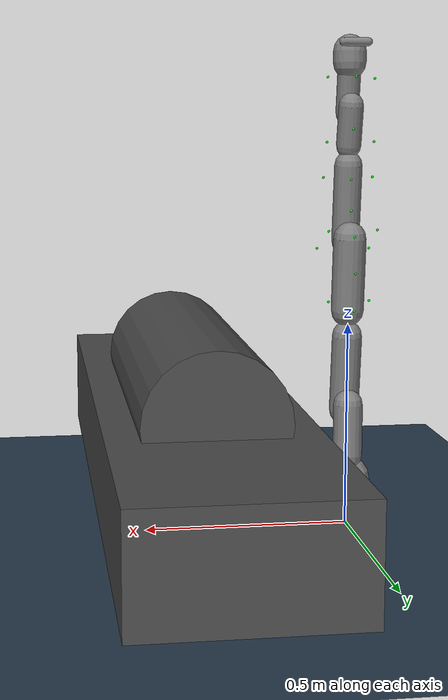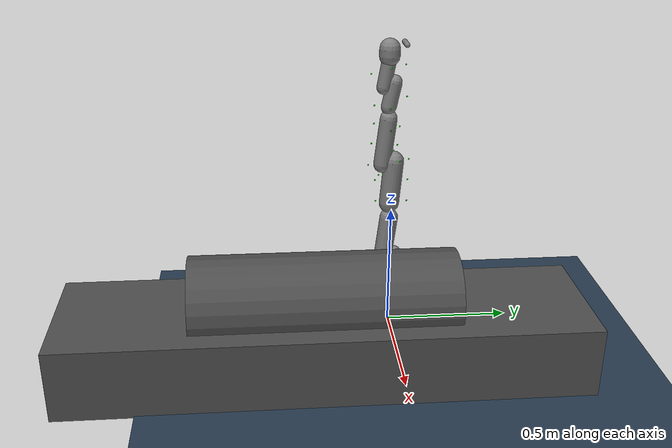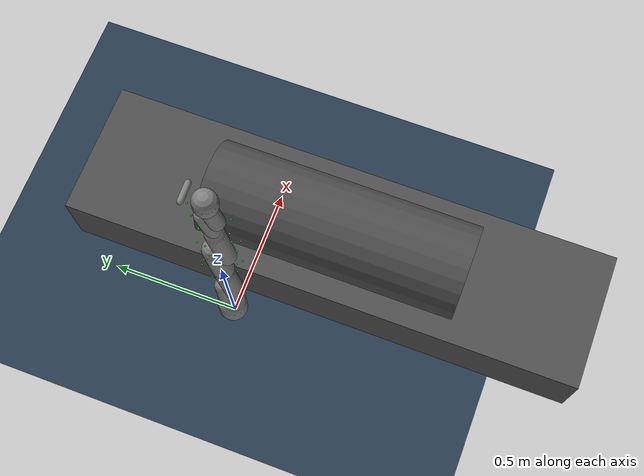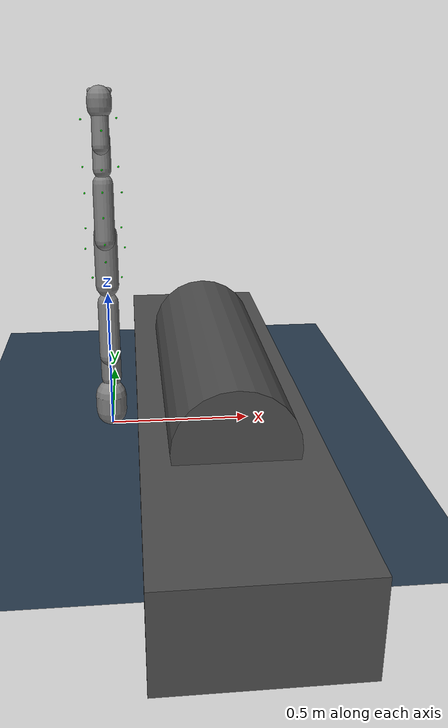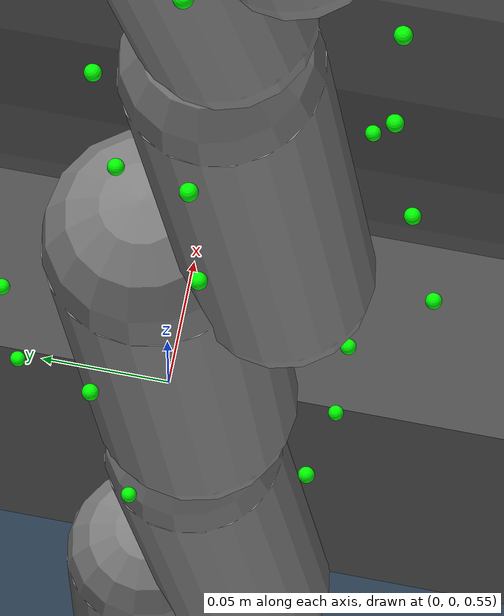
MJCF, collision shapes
<?xml version='1.0' encoding='utf-8'?>
<mujoco model="temp_mj_gen3_scene">
  <include file="gen3_taxels_with_sites_mjcf.xml"/>
  <visual>
    <headlight diffuse="0.6 0.6 0.6" ambient="0.1 0.1 0.1" specular="0 0 0"/>
    <global azimuth="120" elevation="-20"/>
  </visual>
  <asset>
    <texture name="grid" type="2d" builtin="checker" rgb1=".2 .3 .4" rgb2=".1 0.15 0.2" width="512" height="512" mark="cross" markrgb=".8 .8 .8"/>
    <material name="grid" texture="grid" texrepeat="1 1" texuniform="true"/>
  </asset>
  <worldbody>
    <light pos="0 0 1.5" directional="true"/>
    <geom name="floor" size="1 1 0.01" type="plane" material="grid"/>
    <body name="box_0" pos="0.350000 -0.300000 0.130000" quat="1.000000 0.000000 0.000000 0.000000">
      <geom name="box_0" contype="1" conaffinity="1" rgba="0.3 0.3 0.3 1" type="box" size="0.260000 1.000000 0.140000"/>
    </body>
    <body name="cylinder_0" pos="0.350000 -0.300000 0.300000" quat="0.707388 0.706825 0.000000 0.000000">
      <geom name="cylinder_0" contype="1" conaffinity="1" rgba="0.3 0.3 0.3 1" type="cylinder" size="0.180000 0.500000"/>
    </body>
  </worldbody>
</mujoco>

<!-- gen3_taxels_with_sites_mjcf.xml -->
<mujoco model="GEN3_MJCF">
  <compiler angle="radian" meshdir="meshes" autolimits="true"/>
  <option integrator="implicitfast"/>

  <default>
    <default class="GEN3_MJCF">
      <default class="visual">
        <!-- using stls for collision too -->
        <geom type="mesh" contype="0" conaffinity="0" group="2"/>
      </default>
      <default class="collision_capsule">
        <!-- template for your auto‑fitted primitives -->
        <geom type="capsule" group="3" contype="1" conaffinity="1"/>
      </default>
      <default class="collision_box">
        <geom type="box" group="3"/>
      </default>
    </default>
  </default>

  <asset>
    <material name="carbon" rgba="0.9 0.9 0.9 1"/>
    <!-- =========================
         Core robot‑arm link meshes
         ========================= -->
    <mesh name="base_link_mesh"
          file="/home/rishabh/Andres/Manip_planning/mp-osc/multipriority/urdfs/meshes/base_link.STL"/>
    <mesh name="shoulder_link_mesh"
          file="/home/rishabh/Andres/Manip_planning/mp-osc/multipriority/urdfs/meshes/shoulder_link.STL"/>
    <mesh name="half_arm_1_link_mesh"
          file="/home/rishabh/Andres/Manip_planning/mp-osc/multipriority/urdfs/meshes/half_arm_1_link.STL"/>
    <mesh name="half_arm_2_link_mesh"
          file="/home/rishabh/Andres/Manip_planning/mp-osc/multipriority/urdfs/meshes/half_arm_2_link.STL"/>
    <mesh name="forearm_link_mesh"
          file="/home/rishabh/Andres/Manip_planning/mp-osc/multipriority/urdfs/meshes/forearm_link.STL"/>
    <mesh name="spherical_wrist_1_mesh"
          file="/home/rishabh/Andres/Manip_planning/mp-osc/multipriority/urdfs/meshes/spherical_wrist_1_link.STL"/>
    <mesh name="spherical_wrist_2_mesh"
          file="/home/rishabh/Andres/Manip_planning/mp-osc/multipriority/urdfs/meshes/spherical_wrist_2_link.STL"/>
    <mesh name="bracelet_link_mesh"
          file="/home/rishabh/Andres/Manip_planning/mp-osc/multipriority/urdfs/meshes/bracelet_link.STL"/>

    <!-- =====================
         Tactile‑taxel meshes
         ===================== -->
    <mesh name="taxel_0_mesh"  file="taxel_0.STL"  scale="0.01 0.01 0.01"/>
    <mesh name="taxel_1_mesh"  file="taxel_1.STL"  scale="0.01 0.01 0.01"/>
    <mesh name="taxel_2_mesh"  file="taxel_2.STL"  scale="0.01 0.01 0.01"/>
    <mesh name="taxel_3_mesh"  file="taxel_3.STL"  scale="0.01 0.01 0.01"/>
    <mesh name="taxel_4_mesh"  file="taxel_4.STL"  scale="0.01 0.01 0.01"/>
    <mesh name="taxel_5_mesh"  file="taxel_5.STL"  scale="0.01 0.01 0.01"/>
    <mesh name="taxel_6_mesh"  file="taxel_6.STL"  scale="0.01 0.01 0.01"/>
    <mesh name="taxel_7_mesh"  file="taxel_7.STL"  scale="0.01 0.01 0.01"/>
    <mesh name="taxel_8_mesh"  file="taxel_8.STL"  scale="0.01 0.01 0.01"/>
    <mesh name="taxel_9_mesh"  file="taxel_9.STL"  scale="0.01 0.01 0.01"/>
    <mesh name="taxel_10_mesh" file="taxel_10.STL" scale="0.01 0.01 0.01"/>
    <mesh name="taxel_11_mesh" file="taxel_11.STL" scale="0.01 0.01 0.01"/>
    <mesh name="taxel_12_mesh" file="taxel_12.STL" scale="0.01 0.01 0.01"/>
    <mesh name="taxel_13_mesh" file="taxel_13.STL" scale="0.01 0.01 0.01"/>
    <mesh name="taxel_14_mesh" file="taxel_14.STL" scale="0.01 0.01 0.01"/>
    <mesh name="taxel_15_mesh" file="taxel_15.STL" scale="0.01 0.01 0.01"/>
    <mesh name="taxel_16_mesh" file="taxel_16.STL" scale="0.01 0.01 0.01"/>
    <mesh name="taxel_17_mesh" file="taxel_17.STL" scale="0.01 0.01 0.01"/>
    <mesh name="taxel_18_mesh" file="taxel_18.STL" scale="0.01 0.01 0.01"/>
    <mesh name="taxel_19_mesh" file="taxel_19.STL" scale="0.01 0.01 0.01"/>
    <mesh name="taxel_20_mesh" file="taxel_20.STL" scale="0.01 0.01 0.01"/>
    <mesh name="taxel_21_mesh" file="taxel_21.STL" scale="0.01 0.01 0.01"/>
    <mesh name="taxel_22_mesh" file="taxel_22.STL" scale="0.01 0.01 0.01"/>
    <mesh name="taxel_23_mesh" file="taxel_23.STL" scale="0.01 0.01 0.01"/>
    <mesh name="taxel_24_mesh" file="taxel_24.STL" scale="0.01 0.01 0.01"/>
    <mesh name="taxel_25_mesh" file="taxel_25.STL" scale="0.01 0.01 0.01"/>
    <mesh name="taxel_26_mesh" file="taxel_26.STL" scale="0.01 0.01 0.01"/>
    <mesh name="taxel_27_mesh" file="taxel_27.STL" scale="0.01 0.01 0.01"/>
  </asset>

  <worldbody>
    <body name="base_link">
      <geom class="visual" mesh="base_link_mesh" pos="0 0 0" euler="0 0 0"/>
      <geom name="base_link_collision" class="collision_capsule" pos="-0.00358 -0.00007 0.08373" euler="0 0 0" size="0.05518 0.03060" group="3"/>
      <body name="Shoulder_Link" pos="0 0 0.15643" euler="3.1416 2.7629E-18 -4.9305E-36">
        <geom class="visual" mesh="shoulder_link_mesh" pos="0 0 0" euler="0 0 0"/>
        <geom name="shoulder_link_collision" class="collision_capsule" pos="0.00000 -0.01247 -0.08425" euler="0 0 0" size="0.036 0.06322" group="3"/>
        <joint name="Actuator1" type="hinge" axis="0 0 1"/>
        <body name="HalfArm1_Link" pos="0 0.005375 -0.12838" euler="1.5708 2.1343E-17 -1.1102E-16">
          <geom class="visual" mesh="half_arm_1_link_mesh" pos="0 0 0" euler="0 0 0"/>
          <geom name="half_arm_1_link_collision" class="collision_capsule" pos="0.00000 -0.09147 -0.01472" euler="1.45299 -0.00033 -0.00030" size="0.03648 0.09549" group="3"/>
          <joint name="Actuator2" type="hinge" axis="0 0 1"/>
          <body name="HalfArm2_Link" pos="0 -0.21038 -0.006375" euler="-1.5708 1.2326E-32 -2.9122E-16">
            <geom class="visual" mesh="half_arm_2_link_mesh" pos="0 0 0" euler="0 0 0"/>
            <geom name="half_arm_2_link_collision" class="collision_capsule" pos="-0.00001 -0.00837 -0.12799" euler="-0.07897 0.00216 -0.00009" size="0.03990 0.08905" group="3"/>
            <joint name="Actuator3" type="hinge" axis="0 0 1"/>
            <body name="ForeArm_Link" pos="0 0.006375 -0.21038" euler="1.5708 -6.6954E-17 -1.6653E-16">
              <geom class="visual" mesh="forearm_link_mesh" pos="0 0 0" euler="0 0 0"/>
              <geom name="forearm_link_collision" class="collision_capsule" pos="-0.00000 -0.08869 -0.01411" euler="1.45844 0.00078 0.00070" size="0.03382 0.09369" group="3"/>
              <joint name="Actuator4" type="hinge" axis="0 0 1"/>
              <body name="SphericalWrist1_Link" pos="0 -0.20843 -0.006375" euler="-1.5708 2.2204E-16 -6.373E-17">
                <geom class="visual" mesh="spherical_wrist_1_mesh" pos="0 0 0" euler="0 0 0"/>
                <geom name="spherical_wrist_1_link_collision" class="collision_capsule" pos="-0.00001 -0.01147 -0.06810" euler="-0.2 0.00280 -0.00042" size="0.03 0.04916" group="3"/>
                <joint name="Actuator5" type="hinge" axis="0 0 1"/>
                <body name="SphericalWrist2_Link" pos="0 0.00017505 -0.10593" euler="1.5708 9.2076E-28 -8.2157E-15">
                  <geom class="visual" mesh="spherical_wrist_2_mesh" pos="0 0 0" euler="0 0 0"/>
                  <geom name="spherical_wrist_2_link_collision" class="collision_capsule" pos="0.00000 -0.04532 -0.01004" euler="1.4 0.00506 0.00361" size="0.028 0.05413" group="3"/>
                  <joint name="Actuator6" type="hinge" axis="0 0 1"/>
                  <body name="Bracelet_Link" pos="0 -0.10593 -0.00017505" euler="-1.5708 -5.5511E-17 9.6396E-17">
                    <geom class="visual" mesh="bracelet_link_mesh" pos="0 0 0" euler="0 0 0"/>
                    <geom name="bracelet_link_collision" class="collision_capsule" pos="0 0 -0.02" euler="0 0 1.55" size="0.04 0.01350" group="3"/>
                    <geom name="bracelet_link_cam_collision" class="collision_capsule" pos="0 -0.06 -0.0525" euler="1.55 1.55 1.55" size="0.01 0.03" group="3"/>
                    <joint name="Actuator7" type="hinge" axis="0 0 1"/>
                    <site name="ee_site" pos="0 0 -0.061525" size="0.005" rgba="1 0 0 1" type="sphere"/>
                    <body name="EndEffector_Link" pos="0 0 -0.0615250000000001" euler="3.14159265358979 1.09937075168372E-32 0">
                    <body name="GraspPoint_Link" pos="0 0 0.15" euler="0 0 0"/>
                    </body>
                  </body>
                  <body name="Taxel_1000" pos="-0.04250419541867655 -0.07646850041798192 0.0007855905951708805" quat="-0.49549004670060454 -0.495757991613782 0.5555299010360846 -0.44732555977334937">
                    <geom class="visual" mesh="taxel_0_mesh" pos="0 0 0" euler="0 0 0"/>
                    <site name="Taxel_1000_contact_site" pos="0 0.02 0" size="0.003" rgba="0 1 0 1" type="sphere"/>
                  </body>
                  <body name="Taxel_1001" pos="-1.4938605298674768e-05 -0.040050790502569544 -0.051076626480111506" quat="0.617805545901906 0.500036500525442 0.3439452953116905 -0.4999814390835642">
                    <geom class="visual" mesh="taxel_1_mesh" pos="0 0 0" euler="0 0 0"/>
                    <site name="Taxel_1001_contact_site" pos="0.02 0 0" size="0.003" rgba="0 1 0 1" type="sphere"/>
                  </body>
                  <body name="Taxel_1002" pos="0.04271566985884755 -0.07873195857060433 -0.00022802633048775445" quat="0.4954036092387294 0.4958033669965902 0.5555786050791894 -0.44731051720963005">
                    <geom class="visual" mesh="taxel_2_mesh" pos="0 0 0" euler="0 0 0"/>
                    <site name="Taxel_1002_contact_site" pos="0 0.01 0" size="0.003" rgba="0 1 0 1" type="sphere"/>
                  </body>
                  <body name="Taxel_1003" pos="-1.241750836219415e-05 -0.07730975191366674 0.0431837840229755" quat="0.49999743644214245 -0.4721611775935851 -0.49998266763609944 -0.5263874219509945">
                    <geom class="visual" mesh="taxel_3_mesh" pos="0 0 0" euler="0 0 0"/>
                    <site name="Taxel_1003_contact_site" pos="0.02 0 0" size="0.003" rgba="0 1 0 1" type="sphere"/>
                  </body>
                </body>

                <body name="Taxel_1004" pos="0.043150247276728726 -0.0001254639437208889 -0.02783098306648868" quat="0.7066769085264963 -0.00022463346224831096 0.07598410627392084 -0.7034444626898383">
                  <geom class="visual" mesh="taxel_4_mesh" pos="0 0 0" euler="0 0 0"/>
                  <site name="Taxel_1004_contact_site" pos="0 0.01 0" size="0.003" rgba="0 1 0 1" type="sphere"/>
                </body>
                <body name="Taxel_1005" pos="-0.0002382337409993086 -0.05179760671765822 -0.06710984221647054" quat="-0.1153085765173002 -0.5917771330108392 -0.7931583735470257 0.0860438928644129">
                  <geom class="visual" mesh="taxel_5_mesh" pos="0 0 0" euler="0 0 0"/>
                  <site name="Taxel_1005_contact_site" pos="-0.02 0 0" size="0.003" rgba="0 1 0 1" type="sphere"/>
                </body>
                <body name="Taxel_1006" pos="-0.04318974980140639 -0.00010915210035311942 -0.02761946835919482" quat="-0.00020705373551838102 0.7066483360893822 -0.7034931457017315 0.07579894578119584">
                  <geom class="visual" mesh="taxel_6_mesh" pos="0 0 0" euler="0 0 0"/>
                  <site name="Taxel_1006_contact_site" pos="0 0.02 0" size="0.003" rgba="0 1 0 1" type="sphere"/>
                </body>
                <body name="Taxel_1007" pos="-1.1618120415300221e-05 0.043922698718644126 -0.02686054939608018" quat="-0.012048847971181305 -0.7191438184090834 -0.6946445765115851 0.012486233603918742">
                  <geom class="visual" mesh="taxel_7_mesh" pos="0 0 0" euler="0 0 0"/>
                  <site name="Taxel_1007_contact_site" pos="0.01 0 0" size="0.003" rgba="0 1 0 1" type="sphere"/>
                </body>
              </body>

              <body name="Taxel_1008" pos="0.047082560876994604 0.016625508860321547 -0.046140884202656954" quat="-0.4805499798966967 0.858991916812175 0.15563309194411742 -0.08356401357369031">
                <geom class="visual" mesh="taxel_8_mesh" pos="0 0 0" euler="0 0 0"/>
                <site name="Taxel_1008_contact_site" pos="0.02 0 0" size="0.003" rgba="0 1 0 1" type="sphere"/>
              </body>
              <body name="Taxel_1009" pos="-6.7198083501523495e-06 0.05300935180393007 -0.04461977697709482" quat="-0.5670672395281603 -0.42553302531393655 -0.4224050235932269 0.5647392196972744">
                <geom class="visual" mesh="taxel_9_mesh" pos="0 0 0" euler="0 0 0"/>
                <site name="Taxel_1009_contact_site" pos="0 0 -0.02" size="0.003" rgba="0 1 0 1" type="sphere"/>
              </body>
              <body name="Taxel_1010" pos="-0.047097438974916264 0.016627161287515402 -0.04613586787243025" quat="0.0602369798213798 0.2021183185586084 0.9406588744028733 0.2658581831957765">
                <geom class="visual" mesh="taxel_10_mesh" pos="0 0 0" euler="0 0 0"/>
                <site name="Taxel_1010_contact_site" pos="0.02 0 0" size="0.003" rgba="0 1 0 1" type="sphere"/>
              </body>
              <body name="Taxel_1011" pos="-7.590645030513553e-06 0.006405133918228834 -0.06439226342932816" quat="0.522767844447423 0.4999879804533483 0.4761357733791982 -0.5000205251012904">
                <geom class="visual" mesh="taxel_11_mesh" pos="0 0 0" euler="0 0 0"/>
                <site name="Taxel_1011_contact_site" pos="0.015 0 0" size="0.003" rgba="0 1 0 1" type="sphere"/>
              </body>
              <body name="Taxel_1012" pos="-8.828563007841432e-06 -0.08046080686920276 -0.059019306181966213" quat="-0.4520059513097711 0.4999844042629226 -0.5437829173089761 -0.5000063542769618">
                <geom class="visual" mesh="taxel_12_mesh" pos="0 0 0" euler="0 0 0"/>
                <site name="Taxel_1012_contact_site" pos="0.01 0 0" size="0.003" rgba="0 1 0 1" type="sphere"/>
              </body>
              <body name="Taxel_1013" pos="-9.803819467654521e-06 -0.16267771019312338 -0.050246400171184896" quat="-0.4729968354332207 0.49998467919878176 -0.5256263349749248 -0.5000062701781631">
                <geom class="visual" mesh="taxel_13_mesh" pos="0 0 0" euler="0 0 0"/>
                <site name="Taxel_1013_contact_site" pos="0.01 0 0" size="0.003" rgba="0 1 0 1" type="sphere"/>
              </body>
              <body name="Taxel_1014" pos="-0.04173526667542263 -0.15496948117011622 -0.005150262600599035" quat="0.46382658378034697 0.6036324755903242 0.48095446708854106 -0.43494314016768554">
                <geom class="visual" mesh="taxel_14_mesh" pos="0 0 0" euler="0 0 0"/>
                <site name="Taxel_1014_contact_site" pos="0 -0.02 0" size="0.003" rgba="0 1 0 1" type="sphere"/>
              </body>
              <body name="Taxel_1015" pos="0.04171973319335233 -0.15497094542273304 -0.005154707682772205" quat="0.6036291485234604 0.46382756270924497 0.4349297022427556 -0.4809698506466614">
                <geom class="visual" mesh="taxel_15_mesh" pos="0 0 0" euler="0 0 0"/>
                <site name="Taxel_1015_contact_site" pos="0 0.02 0" size="0.003" rgba="0 1 0 1" type="sphere"/>
              </body>
              <body name="Taxel_1016" pos="-5.302853516851408e-06 -0.15282581480448965 0.031012491151505076" quat="0.6462897966083897 0.5000072377234106 -0.28691403824118467 0.4999825953813064">
                <geom class="visual" mesh="taxel_16_mesh" pos="0 0 0" euler="0 0 0"/>
                <site name="Taxel_1016_contact_site" pos="0.01 0 0" size="0.003" rgba="0 1 0 1" type="sphere"/>
              </body>
              <body name="Taxel_1017" pos="-6.150508083981775e-06 -0.07701626534250128 -0.00987434420722404" quat="0.6315248277215402 0.5000070455175422 -0.31809817569846033 0.4999828967288872">
                <geom class="visual" mesh="taxel_17_mesh" pos="0 0 0" euler="0 0 0"/>
                <site name="Taxel_1017_contact_site" pos="0.01 0 0" size="0.003" rgba="0 1 0 1" type="sphere"/>
              </body>
            </body>

            <body name="Taxel_1018" pos="0.04775940299230756 -0.029172408330763868 -0.2301544199406168" quat="0.10118046495791487 -0.6607838065674745 -0.6510725478148105 0.35948826402405704">
              <geom class="visual" mesh="taxel_18_mesh" pos="0 0 0" euler="0 0 0"/>
              <site name="Taxel_1018_contact_site" pos="0 0.01 0" size="0.003" rgba="0 1 0 1" type="sphere"/>
            </body>
            <body name="Taxel_1019" pos="-2.092488763690554e-06 -0.02694220419582137 -0.2644489118296661" quat="-0.5336432730072895 0.46391741331801667 -0.5336525415671008 -0.4639185873333399">
              <geom class="visual" mesh="taxel_19_mesh" pos="0 0 0" euler="0 0 0"/>
              <site name="Taxel_1019_contact_site" pos="0.02 0 0" size="0.003" rgba="0 1 0 1" type="sphere"/>
            </body>
            <body name="Taxel_1020" pos="-0.04713575005582718 -0.026383465676048472 -0.23055139832768035" quat="0.18126608498340646 0.035504008467736076 0.9677098631757791 0.17152169696521297">
              <geom class="visual" mesh="taxel_20_mesh" pos="0 0 0" euler="0 0 0"/>
              <site name="Taxel_1020_contact_site" pos="0.02 0 0" size="0.003" rgba="0 1 0 1" type="sphere"/>
            </body>
            <body name="Taxel_1021" pos="-1.2173507245044695e-06 -0.054580934607185494 -0.22775170878253925" quat="-0.05055865348607764 -0.6565271540612538 -0.7513077310057058 0.04418836802783569">
              <geom class="visual" mesh="taxel_21_mesh" pos="0 0 0" euler="0 0 0"/>
              <site name="Taxel_1021_contact_site" pos="-0.02 0 0" size="0.003" rgba="0 1 0 1" type="sphere"/>
            </body>
            <body name="Taxel_1022" pos="-0.0001333060986898991 -0.05338028930573722 -0.1389517161450241" quat="0.020944198492622863 0.6861879570978644 -0.7268540200870826 0.01976516042454964">
              <geom class="visual" mesh="taxel_22_mesh" pos="0 0 0" euler="0 0 0"/>
              <site name="Taxel_1022_contact_site" pos="0.02 0 0" size="0.003" rgba="0 1 0 1" type="sphere"/>
            </body>
            <body name="Taxel_1023" pos="-3.23855682768594e-05 -0.05187961469696644 -0.04785172827035311" quat="0.012129581476701687 0.7192487626159917 -0.6945333033911236 0.012553135432175103">
              <geom class="visual" mesh="taxel_23_mesh" pos="0 0 0" euler="0 0 0"/>
              <site name="Taxel_1023_contact_site" pos="0.02 0 0" size="0.003" rgba="0 1 0 1" type="sphere"/>
            </body>
            <body name="Taxel_1024" pos="-0.0500349226337144 -0.007382389594276225 -0.06305150607070498" quat="-0.08616818804246879 0.7071257885121112 -0.7018177559578025 -3.599643069895908e-06">
              <geom class="visual" mesh="taxel_24_mesh" pos="0 0 0" euler="0 0 0"/>
              <site name="Taxel_1024_contact_site" pos="0.01 0 0" size="0.003" rgba="0 1 0 1" type="sphere"/>
            </body>
            <body name="Taxel_1025" pos="0.05086506074464583 -0.00737702635118296 -0.06455261415550584" quat="-0.09841668563118262 -0.70712506759444 0.7002058945533199 -1.310240171914501e-06">
              <geom class="visual" mesh="taxel_25_mesh" pos="0 0 0" euler="0 0 0"/>
              <site name="Taxel_1025_contact_site" pos="0.01 0 0" size="0.003" rgba="0 1 0 1" type="sphere"/>
            </body>
            <body name="Taxel_1026" pos="0.0018625242094073681 0.04412050179254166 -0.0457524543636606" quat="0.6940955158731572 -0.13492466600078207 0.13492510223719884 0.6941339684352255">
              <geom class="visual" mesh="taxel_26_mesh" pos="0 0 0" euler="0 0 0"/>
              <site name="Taxel_1026_contact_site" pos="0.01 0 0" size="0.003" rgba="0 1 0 1" type="sphere"/>
            </body>
            <body name="Taxel_1027" pos="0.0008638901480674864 0.004619954887956686 -0.11295215320413332" quat="0.687549540441228 -0.16507394606822146 0.1650727046122378 0.6875879754333428">
              <geom class="visual" mesh="taxel_27_mesh" pos="0 0 0" euler="0 0 0"/>
              <site name="Taxel_1027_contact_site" pos="0.01 0 0" size="0.003" rgba="0 1 0 1" type="sphere"/>
            </body>

          </body>
        </body>
      </body>
    </body>
  </worldbody>
  <actuator>
    <position name="act1" joint="Actuator1" kp="2000" kv="100"
              ctrlrange="-3.142 3.142" forcerange="-39 39"/>
    <position name="act2" joint="Actuator2" kp="2000" kv="100"
              ctrlrange="-2.41 2.41"   forcerange="-39 39"/>
    <position name="act3" joint="Actuator3" kp="2000" kv="100"
              ctrlrange="-3.142 3.142" forcerange="-39 39"/>
    <position name="act4" joint="Actuator4" kp="2000" kv="100"
              ctrlrange="-2.66 2.66"   forcerange="-39 39"/>
    <position name="act5" joint="Actuator5" kp="500"  kv="25"
              ctrlrange="-3.142 3.142" forcerange="-9 9"/>
    <position name="act6" joint="Actuator6" kp="500"  kv="25"
              ctrlrange="-2.23 2.23"   forcerange="-9 9"/>
    <position name="act7" joint="Actuator7" kp="500"  kv="25"
              ctrlrange="-3.142 3.142" forcerange="-9 9"/>
  </actuator>
</mujoco>
